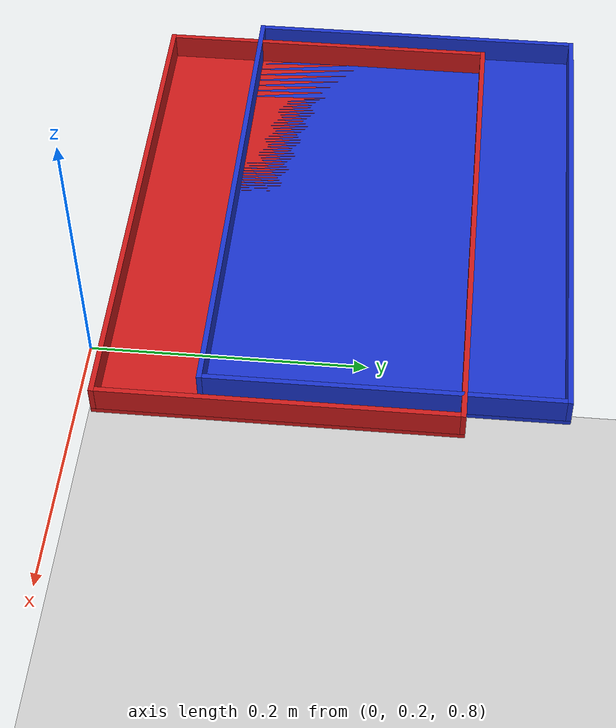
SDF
<?xml version="1.0" ?>
<!--
  Generated by plantorv_sim/scripts/generate_world.py from config/scene.yaml.
  Do not edit: edit the yaml and regenerate.
-->
<sdf version="1.6">
  <world name="plantorv">

    <physics name="default_physics" default="true" type="ode">
      <max_step_size>0.001</max_step_size>
      <real_time_factor>1.0</real_time_factor>
      <real_time_update_rate>1000</real_time_update_rate>
    </physics>

    <!-- Ground-truth object poses on /gazebo/model_states, which world_model
         answers pose queries from. -->
    <plugin name="gazebo_ros_state" filename="libgazebo_ros_state.so">
      <ros>
        <namespace>/gazebo</namespace>
      </ros>
      <update_rate>20.0</update_rate>
    </plugin>

    <include><uri>model://sun</uri></include>
    <include><uri>model://ground_plane</uri></include>

    <scene>
      <ambient>0.6 0.6 0.6 1</ambient>
      <shadows>true</shadows>
    </scene>

    <gui>
      <camera name="user_camera">
        <pose>0.0 2.4 2.2 0 0.6 -1.5707963</pose>
      </camera>
    </gui>

    <model name="tray_blue">
      <static>true</static>
      <pose>-0.200000 0.412500 0.762500 0 0 0.000000</pose>
      <link name="base_link">
        <collision name="tray_blue_0_collision">
          <pose>0.000000 0.000000 -0.010500 0 0 0</pose>
          <geometry><box><size>0.400000 0.275000 0.004000</size></box></geometry>
          <surface><friction><ode>
            <mu>1.0</mu><mu2>1.0</mu2>
          </ode></friction></surface>
        </collision>
        <visual name="tray_blue_0_visual">
          <pose>0.000000 0.000000 -0.010500 0 0 0</pose>
          <geometry><box><size>0.400000 0.275000 0.004000</size></box></geometry>
          <material>
            <ambient>0.100 0.200 0.800 1.000</ambient>
            <diffuse>0.100 0.200 0.800 1.000</diffuse>
          </material>
        </visual>
        <collision name="tray_blue_1_collision">
          <pose>0.000000 0.135500 0.002000 0 0 0</pose>
          <geometry><box><size>0.400000 0.004000 0.021000</size></box></geometry>
          <surface><friction><ode>
            <mu>1.0</mu><mu2>1.0</mu2>
          </ode></friction></surface>
        </collision>
        <visual name="tray_blue_1_visual">
          <pose>0.000000 0.135500 0.002000 0 0 0</pose>
          <geometry><box><size>0.400000 0.004000 0.021000</size></box></geometry>
          <material>
            <ambient>0.100 0.200 0.800 1.000</ambient>
            <diffuse>0.100 0.200 0.800 1.000</diffuse>
          </material>
        </visual>
        <collision name="tray_blue_2_collision">
          <pose>0.000000 -0.135500 0.002000 0 0 0</pose>
          <geometry><box><size>0.400000 0.004000 0.021000</size></box></geometry>
          <surface><friction><ode>
            <mu>1.0</mu><mu2>1.0</mu2>
          </ode></friction></surface>
        </collision>
        <visual name="tray_blue_2_visual">
          <pose>0.000000 -0.135500 0.002000 0 0 0</pose>
          <geometry><box><size>0.400000 0.004000 0.021000</size></box></geometry>
          <material>
            <ambient>0.100 0.200 0.800 1.000</ambient>
            <diffuse>0.100 0.200 0.800 1.000</diffuse>
          </material>
        </visual>
        <collision name="tray_blue_3_collision">
          <pose>0.198000 0.000000 0.002000 0 0 0</pose>
          <geometry><box><size>0.004000 0.267000 0.021000</size></box></geometry>
          <surface><friction><ode>
            <mu>1.0</mu><mu2>1.0</mu2>
          </ode></friction></surface>
        </collision>
        <visual name="tray_blue_3_visual">
          <pose>0.198000 0.000000 0.002000 0 0 0</pose>
          <geometry><box><size>0.004000 0.267000 0.021000</size></box></geometry>
          <material>
            <ambient>0.100 0.200 0.800 1.000</ambient>
            <diffuse>0.100 0.200 0.800 1.000</diffuse>
          </material>
        </visual>
        <collision name="tray_blue_4_collision">
          <pose>-0.198000 0.000000 0.002000 0 0 0</pose>
          <geometry><box><size>0.004000 0.267000 0.021000</size></box></geometry>
          <surface><friction><ode>
            <mu>1.0</mu><mu2>1.0</mu2>
          </ode></friction></surface>
        </collision>
        <visual name="tray_blue_4_visual">
          <pose>-0.198000 0.000000 0.002000 0 0 0</pose>
          <geometry><box><size>0.004000 0.267000 0.021000</size></box></geometry>
          <material>
            <ambient>0.100 0.200 0.800 1.000</ambient>
            <diffuse>0.100 0.200 0.800 1.000</diffuse>
          </material>
        </visual>
      </link>
    </model>
    <model name="tray_red">
      <static>true</static>
      <pose>-0.181000 0.336000 0.762500 0 0 0.000000</pose>
      <link name="base_link">
        <collision name="tray_red_0_collision">
          <pose>0.000000 0.000000 -0.010500 0 0 0</pose>
          <geometry><box><size>0.400000 0.275000 0.004000</size></box></geometry>
          <surface><friction><ode>
            <mu>1.0</mu><mu2>1.0</mu2>
          </ode></friction></surface>
        </collision>
        <visual name="tray_red_0_visual">
          <pose>0.000000 0.000000 -0.010500 0 0 0</pose>
          <geometry><box><size>0.400000 0.275000 0.004000</size></box></geometry>
          <material>
            <ambient>0.800 0.100 0.100 1.000</ambient>
            <diffuse>0.800 0.100 0.100 1.000</diffuse>
          </material>
        </visual>
        <collision name="tray_red_1_collision">
          <pose>0.000000 0.135500 0.002000 0 0 0</pose>
          <geometry><box><size>0.400000 0.004000 0.021000</size></box></geometry>
          <surface><friction><ode>
            <mu>1.0</mu><mu2>1.0</mu2>
          </ode></friction></surface>
        </collision>
        <visual name="tray_red_1_visual">
          <pose>0.000000 0.135500 0.002000 0 0 0</pose>
          <geometry><box><size>0.400000 0.004000 0.021000</size></box></geometry>
          <material>
            <ambient>0.800 0.100 0.100 1.000</ambient>
            <diffuse>0.800 0.100 0.100 1.000</diffuse>
          </material>
        </visual>
        <collision name="tray_red_2_collision">
          <pose>0.000000 -0.135500 0.002000 0 0 0</pose>
          <geometry><box><size>0.400000 0.004000 0.021000</size></box></geometry>
          <surface><friction><ode>
            <mu>1.0</mu><mu2>1.0</mu2>
          </ode></friction></surface>
        </collision>
        <visual name="tray_red_2_visual">
          <pose>0.000000 -0.135500 0.002000 0 0 0</pose>
          <geometry><box><size>0.400000 0.004000 0.021000</size></box></geometry>
          <material>
            <ambient>0.800 0.100 0.100 1.000</ambient>
            <diffuse>0.800 0.100 0.100 1.000</diffuse>
          </material>
        </visual>
        <collision name="tray_red_3_collision">
          <pose>0.198000 0.000000 0.002000 0 0 0</pose>
          <geometry><box><size>0.004000 0.267000 0.021000</size></box></geometry>
          <surface><friction><ode>
            <mu>1.0</mu><mu2>1.0</mu2>
          </ode></friction></surface>
        </collision>
        <visual name="tray_red_3_visual">
          <pose>0.198000 0.000000 0.002000 0 0 0</pose>
          <geometry><box><size>0.004000 0.267000 0.021000</size></box></geometry>
          <material>
            <ambient>0.800 0.100 0.100 1.000</ambient>
            <diffuse>0.800 0.100 0.100 1.000</diffuse>
          </material>
        </visual>
        <collision name="tray_red_4_collision">
          <pose>-0.198000 0.000000 0.002000 0 0 0</pose>
          <geometry><box><size>0.004000 0.267000 0.021000</size></box></geometry>
          <surface><friction><ode>
            <mu>1.0</mu><mu2>1.0</mu2>
          </ode></friction></surface>
        </collision>
        <visual name="tray_red_4_visual">
          <pose>-0.198000 0.000000 0.002000 0 0 0</pose>
          <geometry><box><size>0.004000 0.267000 0.021000</size></box></geometry>
          <material>
            <ambient>0.800 0.100 0.100 1.000</ambient>
            <diffuse>0.800 0.100 0.100 1.000</diffuse>
          </material>
        </visual>
      </link>
    </model>

  </world>
</sdf>
